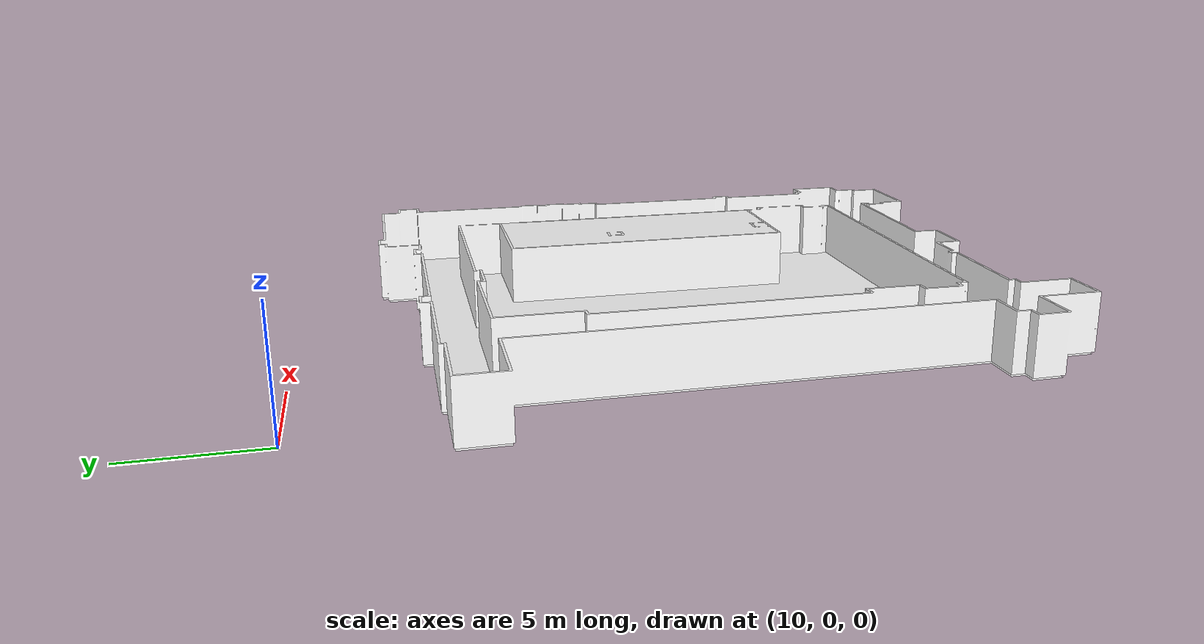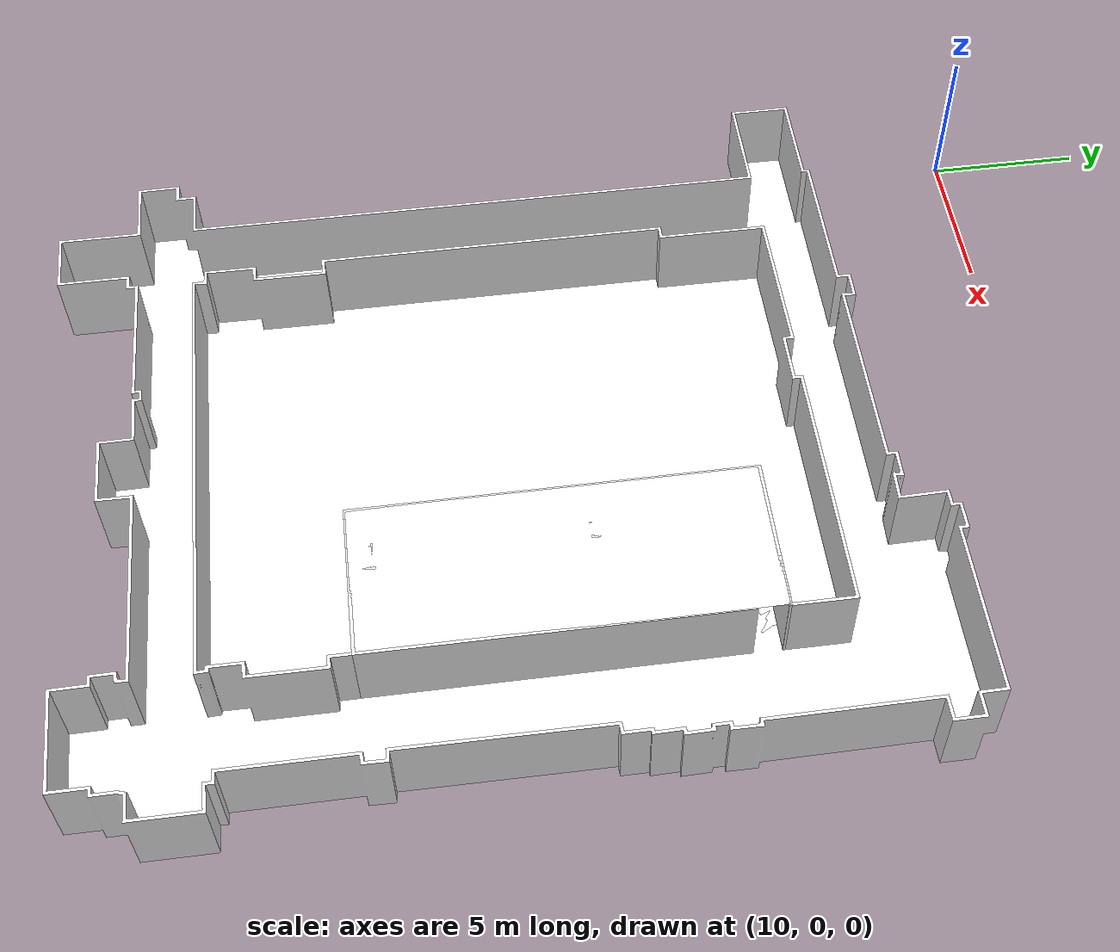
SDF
<?xml version='1.0' encoding='utf-8'?>
<sdf version="1.7">
  <model name="A2230_map_layout">
    <static>true</static>
    <link name="floor_1">
      <visual name="visual">
        <geometry>
          <mesh>
            <uri>model://A2230_map_layout/meshes/floor_1.obj</uri>
          </mesh>
        </geometry>
        <material>
          <diffuse>1.0 1.0 1.0</diffuse>
          <specular>0.1 0.1 0.1</specular>
          <pbr>
            <metal>
              <metalness>0.0</metalness>
              <albedo_map>model://A2230_map_layout/meshes/gray_flooring.png</albedo_map>
            </metal>
          </pbr>
          <script>
            <uri>model://A2230_map_layout/meshes/</uri>
            <name>floor_1_Diffuse</name>
          </script>
        </material>
      </visual>
      <collision name="collision">
        <geometry>
          <mesh>
            <uri>model://A2230_map_layout/meshes/floor_1.obj</uri>
          </mesh>
        </geometry>
        <surface>
          <contact>
            <collide_bitmask>0x01</collide_bitmask>
          </contact>
        </surface>
      </collision>
    </link>
    <link name="ceiling_1">
      <visual name="visual">
        <geometry>
          <mesh>
            <uri>model://A2230_map_layout/meshes/ceiling_1.obj</uri>
          </mesh>
        </geometry>
        <material>
          <diffuse>1.0 1.0 1.0</diffuse>
          <specular>0.1 0.1 0.1</specular>
          <pbr>
            <metal>
              <metalness>0.0</metalness>
              <albedo_map>model://A2230_map_layout/meshes/gray_flooring.png</albedo_map>
            </metal>
          </pbr>
          <script>
            <uri>model://A2230_map_layout/meshes/</uri>
            <name>ceiling_1_Diffuse</name>
          </script>
        </material>
      </visual>
      <collision name="collision">
        <geometry>
          <mesh>
            <uri>model://A2230_map_layout/meshes/ceiling_1.obj</uri>
          </mesh>
        </geometry>
        <surface>
          <contact>
            <collide_bitmask>0x01</collide_bitmask>
          </contact>
        </surface>
      </collision>
    </link>
    <link name="floor_2">
      <visual name="visual">
        <geometry>
          <mesh>
            <uri>model://A2230_map_layout/meshes/floor_2.obj</uri>
          </mesh>
        </geometry>
        <material>
          <diffuse>1.0 1.0 1.0</diffuse>
          <specular>0.1 0.1 0.1</specular>
          <pbr>
            <metal>
              <metalness>0.0</metalness>
              <albedo_map>model://A2230_map_layout/meshes/concrete3.png</albedo_map>
            </metal>
          </pbr>
          <script>
            <uri>model://A2230_map_layout/meshes/</uri>
            <name>floor_2_Diffuse</name>
          </script>
        </material>
      </visual>
      <collision name="collision">
        <geometry>
          <mesh>
            <uri>model://A2230_map_layout/meshes/floor_2.obj</uri>
          </mesh>
        </geometry>
        <surface>
          <contact>
            <collide_bitmask>0x01</collide_bitmask>
          </contact>
        </surface>
      </collision>
    </link>
    <link name="wall_1">
      <visual name="wall_1">
        <geometry>
          <mesh>
            <uri>model://A2230_map_layout/meshes/wall_1.obj</uri>
          </mesh>
        </geometry>
        <transparency>0.0</transparency>
        <material>
          <diffuse>1.0 1.0 1.0</diffuse>
          <specular>0.1 0.1 0.1</specular>
          <pbr>
            <metal>
              <metalness>0.0</metalness>
              <albedo_map>model://A2230_map_layout/meshes/white_brick.png</albedo_map>
            </metal>
          </pbr>
          <script>
            <uri>model://A2230_map_layout/meshes/</uri>
            <name>wall_1_Diffuse</name>
          </script>
        </material>
      </visual>
      <collision name="collision">
        <geometry>
          <mesh>
            <uri>model://A2230_map_layout/meshes/wall_1.obj</uri>
          </mesh>
        </geometry>
        <surface>
          <contact>
            <collide_bitmask>0x01</collide_bitmask>
          </contact>
        </surface>
      </collision>
      <pose>23.92924920426243 -21.97584710088617 0 0 0 0</pose>
    </link>
    <link name="wall_2">
      <visual name="wall_2">
        <geometry>
          <mesh>
            <uri>model://A2230_map_layout/meshes/wall_2.obj</uri>
          </mesh>
        </geometry>
        <transparency>0.0</transparency>
        <material>
          <diffuse>1.0 1.0 1.0</diffuse>
          <specular>0.1 0.1 0.1</specular>
          <pbr>
            <metal>
              <metalness>0.0</metalness>
              <albedo_map>model://A2230_map_layout/meshes/default.png</albedo_map>
            </metal>
          </pbr>
          <script>
            <uri>model://A2230_map_layout/meshes/</uri>
            <name>wall_2_Diffuse</name>
          </script>
        </material>
      </visual>
      <collision name="collision">
        <geometry>
          <mesh>
            <uri>model://A2230_map_layout/meshes/wall_2.obj</uri>
          </mesh>
        </geometry>
        <surface>
          <contact>
            <collide_bitmask>0x01</collide_bitmask>
          </contact>
        </surface>
      </collision>
      <pose>8.58452619861297 -30.84328475728172 0 0 0 0</pose>
    </link>
  </model>
</sdf>
